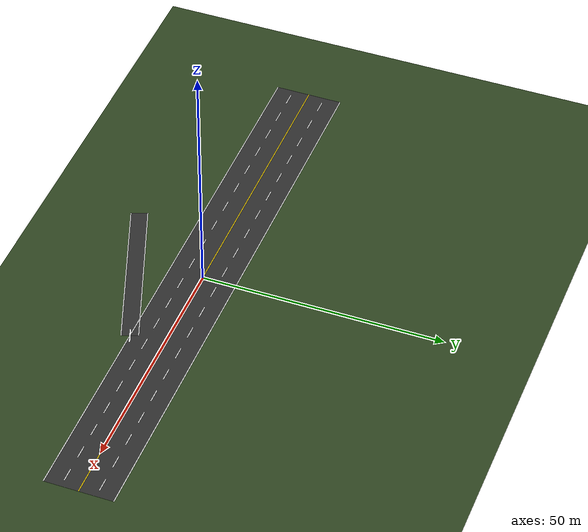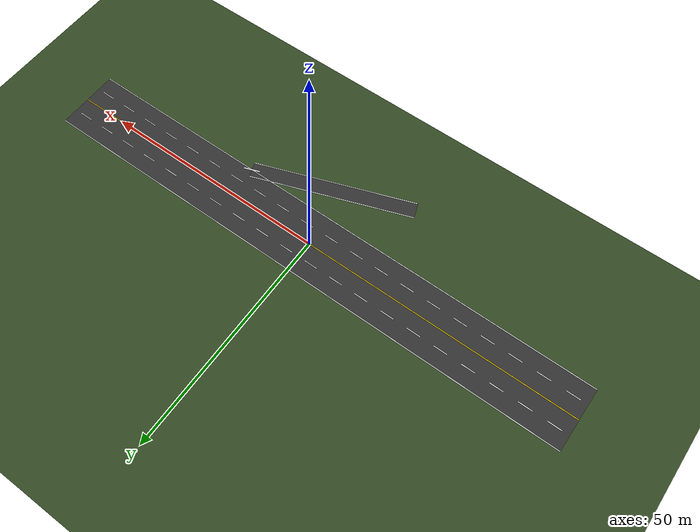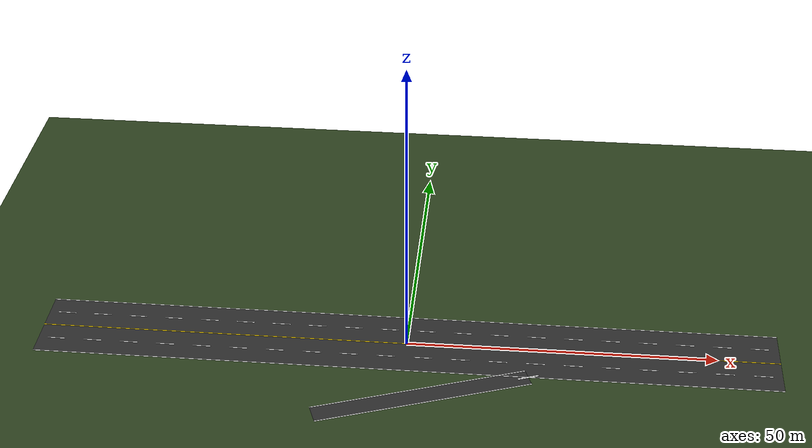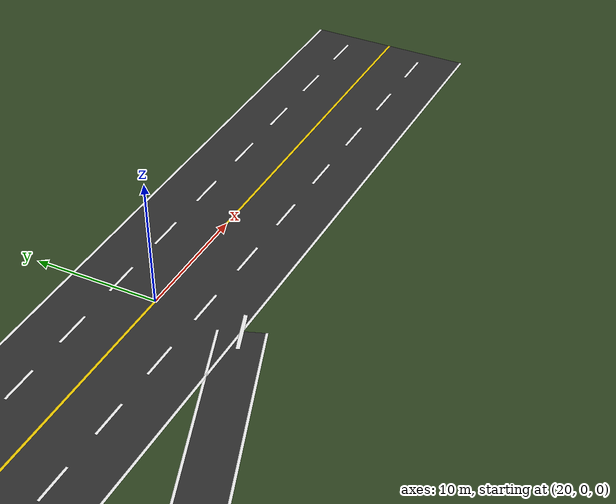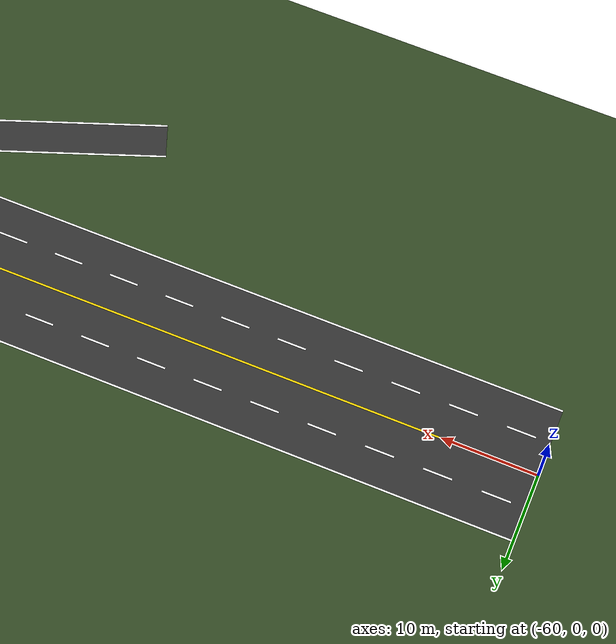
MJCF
<mujoco>

  <statistic center="0 -7 0" extent="65" meansize="0.5"/>

  <visual>
    <headlight diffuse="0.6 0.6 0.6" ambient="0.3 0.3 0.3" specular="0 0 0"/>
    <rgba haze="0.15 0.25 0.35 1"/>
    <global azimuth="-20" elevation="-20" ellipsoidinertia="true"/>
  </visual>

  <asset>
    <texture type="skybox" builtin="gradient" rgb1="0.3 0.5 0.7" rgb2="0 0 0"
             width="512" height="3072"/>
    <texture type="2d" name="groundplane" builtin="checker" mark="edge"
             rgb1="0.22 0.32 0.16" rgb2="0.18 0.26 0.12"
             markrgb="0.28 0.38 0.20" width="300" height="300"/>
    <material name="groundplane" texture="groundplane" texuniform="true"
              texrepeat="25 25" reflectance="0.05"/>
    <material name="road"          rgba="0.20 0.20 0.20 1"/>
    <material name="marking_white" rgba="1.00 1.00 1.00 1"/>
    <material name="marking_yellow" rgba="1.00 0.85 0.00 1"/>
  </asset>

  <worldbody>
    <light pos="0 0 40" dir="0 0 -1" directional="true"
           diffuse="0.8 0.8 0.8" ambient="0.4 0.4 0.4"/>

    <!-- Infinite grass/earth ground plane -->
    <geom name="floor" size="0 0 0.05" type="plane" material="groundplane"/>

    <geom name="road_main" type="box" pos="0 0 0.001" size="60 7 0.001"
          material="road" contype="0" conaffinity="0"/>

    <!-- ================================================================
         EDGE LINES  (solid white, 0.2 m wide)
    ================================================================ -->
    <geom name="edge_south" type="box" pos="0 -7 0.002" size="60 0.1 0.001"
          material="marking_white" contype="0" conaffinity="0"/>
    <geom name="edge_north" type="box" pos="0  7 0.002" size="60 0.1 0.001"
          material="marking_white" contype="0" conaffinity="0"/>

    <geom name="centre_divider" type="box" pos="0 0 0.002" size="60 0.1 0.001"
          material="marking_yellow" contype="0" conaffinity="0"/>

    <!-- Eastbound lane divider (y = -3.5) -->
    <geom name="dash_E_00" type="box" pos="-57 -3.5 0.002" size="1.5 0.1 0.001" material="marking_white" contype="0" conaffinity="0"/>
    <geom name="dash_E_01" type="box" pos="-51 -3.5 0.002" size="1.5 0.1 0.001" material="marking_white" contype="0" conaffinity="0"/>
    <geom name="dash_E_02" type="box" pos="-45 -3.5 0.002" size="1.5 0.1 0.001" material="marking_white" contype="0" conaffinity="0"/>
    <geom name="dash_E_03" type="box" pos="-39 -3.5 0.002" size="1.5 0.1 0.001" material="marking_white" contype="0" conaffinity="0"/>
    <geom name="dash_E_04" type="box" pos="-33 -3.5 0.002" size="1.5 0.1 0.001" material="marking_white" contype="0" conaffinity="0"/>
    <geom name="dash_E_05" type="box" pos="-27 -3.5 0.002" size="1.5 0.1 0.001" material="marking_white" contype="0" conaffinity="0"/>
    <geom name="dash_E_06" type="box" pos="-21 -3.5 0.002" size="1.5 0.1 0.001" material="marking_white" contype="0" conaffinity="0"/>
    <geom name="dash_E_07" type="box" pos="-15 -3.5 0.002" size="1.5 0.1 0.001" material="marking_white" contype="0" conaffinity="0"/>
    <geom name="dash_E_08" type="box" pos=" -9 -3.5 0.002" size="1.5 0.1 0.001" material="marking_white" contype="0" conaffinity="0"/>
    <geom name="dash_E_09" type="box" pos=" -3 -3.5 0.002" size="1.5 0.1 0.001" material="marking_white" contype="0" conaffinity="0"/>
    <geom name="dash_E_10" type="box" pos="  3 -3.5 0.002" size="1.5 0.1 0.001" material="marking_white" contype="0" conaffinity="0"/>
    <geom name="dash_E_11" type="box" pos="  9 -3.5 0.002" size="1.5 0.1 0.001" material="marking_white" contype="0" conaffinity="0"/>
    <geom name="dash_E_12" type="box" pos=" 15 -3.5 0.002" size="1.5 0.1 0.001" material="marking_white" contype="0" conaffinity="0"/>
    <geom name="dash_E_13" type="box" pos=" 21 -3.5 0.002" size="1.5 0.1 0.001" material="marking_white" contype="0" conaffinity="0"/>
    <geom name="dash_E_14" type="box" pos=" 27 -3.5 0.002" size="1.5 0.1 0.001" material="marking_white" contype="0" conaffinity="0"/>
    <geom name="dash_E_15" type="box" pos=" 33 -3.5 0.002" size="1.5 0.1 0.001" material="marking_white" contype="0" conaffinity="0"/>
    <geom name="dash_E_16" type="box" pos=" 39 -3.5 0.002" size="1.5 0.1 0.001" material="marking_white" contype="0" conaffinity="0"/>
    <geom name="dash_E_17" type="box" pos=" 45 -3.5 0.002" size="1.5 0.1 0.001" material="marking_white" contype="0" conaffinity="0"/>
    <geom name="dash_E_18" type="box" pos=" 51 -3.5 0.002" size="1.5 0.1 0.001" material="marking_white" contype="0" conaffinity="0"/>
    <geom name="dash_E_19" type="box" pos=" 57 -3.5 0.002" size="1.5 0.1 0.001" material="marking_white" contype="0" conaffinity="0"/>

    <!-- Westbound lane divider (y = +3.5) -->
    <geom name="dash_W_00" type="box" pos="-57  3.5 0.002" size="1.5 0.1 0.001" material="marking_white" contype="0" conaffinity="0"/>
    <geom name="dash_W_01" type="box" pos="-51  3.5 0.002" size="1.5 0.1 0.001" material="marking_white" contype="0" conaffinity="0"/>
    <geom name="dash_W_02" type="box" pos="-45  3.5 0.002" size="1.5 0.1 0.001" material="marking_white" contype="0" conaffinity="0"/>
    <geom name="dash_W_03" type="box" pos="-39  3.5 0.002" size="1.5 0.1 0.001" material="marking_white" contype="0" conaffinity="0"/>
    <geom name="dash_W_04" type="box" pos="-33  3.5 0.002" size="1.5 0.1 0.001" material="marking_white" contype="0" conaffinity="0"/>
    <geom name="dash_W_05" type="box" pos="-27  3.5 0.002" size="1.5 0.1 0.001" material="marking_white" contype="0" conaffinity="0"/>
    <geom name="dash_W_06" type="box" pos="-21  3.5 0.002" size="1.5 0.1 0.001" material="marking_white" contype="0" conaffinity="0"/>
    <geom name="dash_W_07" type="box" pos="-15  3.5 0.002" size="1.5 0.1 0.001" material="marking_white" contype="0" conaffinity="0"/>
    <geom name="dash_W_08" type="box" pos=" -9  3.5 0.002" size="1.5 0.1 0.001" material="marking_white" contype="0" conaffinity="0"/>
    <geom name="dash_W_09" type="box" pos=" -3  3.5 0.002" size="1.5 0.1 0.001" material="marking_white" contype="0" conaffinity="0"/>
    <geom name="dash_W_10" type="box" pos="  3  3.5 0.002" size="1.5 0.1 0.001" material="marking_white" contype="0" conaffinity="0"/>
    <geom name="dash_W_11" type="box" pos="  9  3.5 0.002" size="1.5 0.1 0.001" material="marking_white" contype="0" conaffinity="0"/>
    <geom name="dash_W_12" type="box" pos=" 15  3.5 0.002" size="1.5 0.1 0.001" material="marking_white" contype="0" conaffinity="0"/>
    <geom name="dash_W_13" type="box" pos=" 21  3.5 0.002" size="1.5 0.1 0.001" material="marking_white" contype="0" conaffinity="0"/>
    <geom name="dash_W_14" type="box" pos=" 27  3.5 0.002" size="1.5 0.1 0.001" material="marking_white" contype="0" conaffinity="0"/>
    <geom name="dash_W_15" type="box" pos=" 33  3.5 0.002" size="1.5 0.1 0.001" material="marking_white" contype="0" conaffinity="0"/>
    <geom name="dash_W_16" type="box" pos=" 39  3.5 0.002" size="1.5 0.1 0.001" material="marking_white" contype="0" conaffinity="0"/>
    <geom name="dash_W_17" type="box" pos=" 45  3.5 0.002" size="1.5 0.1 0.001" material="marking_white" contype="0" conaffinity="0"/>
    <geom name="dash_W_18" type="box" pos=" 51  3.5 0.002" size="1.5 0.1 0.001" material="marking_white" contype="0" conaffinity="0"/>
    <geom name="dash_W_19" type="box" pos=" 57  3.5 0.002" size="1.5 0.1 0.001" material="marking_white" contype="0" conaffinity="0"/>

    <geom name="ramp" type="box"
          pos="3.5 -13 0.001" size="17.5 1.75 0.001" euler="0 0 20"
          material="road" contype="0" conaffinity="0"/>

    <!-- Ramp inner edge (left / main-road side)
         Centre = ramp_centre + 1.75 × (-sin20°, cos20°) = (3.5-0.60, -13+1.64) = (2.9, -11.4) -->
    <geom name="ramp_edge_inner" type="box"
          pos="2.9 -11.4 0.002" size="17.5 0.1 0.001" euler="0 0 20"
          material="marking_white" contype="0" conaffinity="0"/>

    <!-- Ramp outer edge (right / south side)
         Centre = ramp_centre + 1.75 × (sin20°, -cos20°) = (3.5+0.60, -13-1.64) = (4.1, -14.6) -->
    <geom name="ramp_edge_outer" type="box"
          pos="4.1 -14.6 0.002" size="17.5 0.1 0.001" euler="0 0 20"
          material="marking_white" contype="0" conaffinity="0"/>

    <!-- Yield line at merge nose
         A dashed white line across the ramp width at the merge point (x≈20, y≈-7).
         Oriented perpendicular to the ramp (i.e. euler z = 20°+90° = 110°). -->
    <geom name="yield_line" type="box"
          pos="19.9 -7.0 0.003" size="0.15 1.75 0.001" euler="0 0 110"
          material="marking_white" contype="0" conaffinity="0"/>

    <!-- Vehicle 1 — main road, eastbound right lane (the merge target lane) -->
    <frame name="spawn_main_right" pos="-15 -1.75 0" euler="0 0 0"/>

    <!-- Vehicle 2 — main road, eastbound left lane -->
    <frame name="spawn_main_left"  pos="-25 -5.25 0" euler="0 0 0"/>

    <!-- Vehicle 3 — on-ramp, heading toward merge nose -->
    <frame name="spawn_merging"    pos="-2 -15 0"    euler="0 0 20"/>

  </worldbody>
</mujoco>
